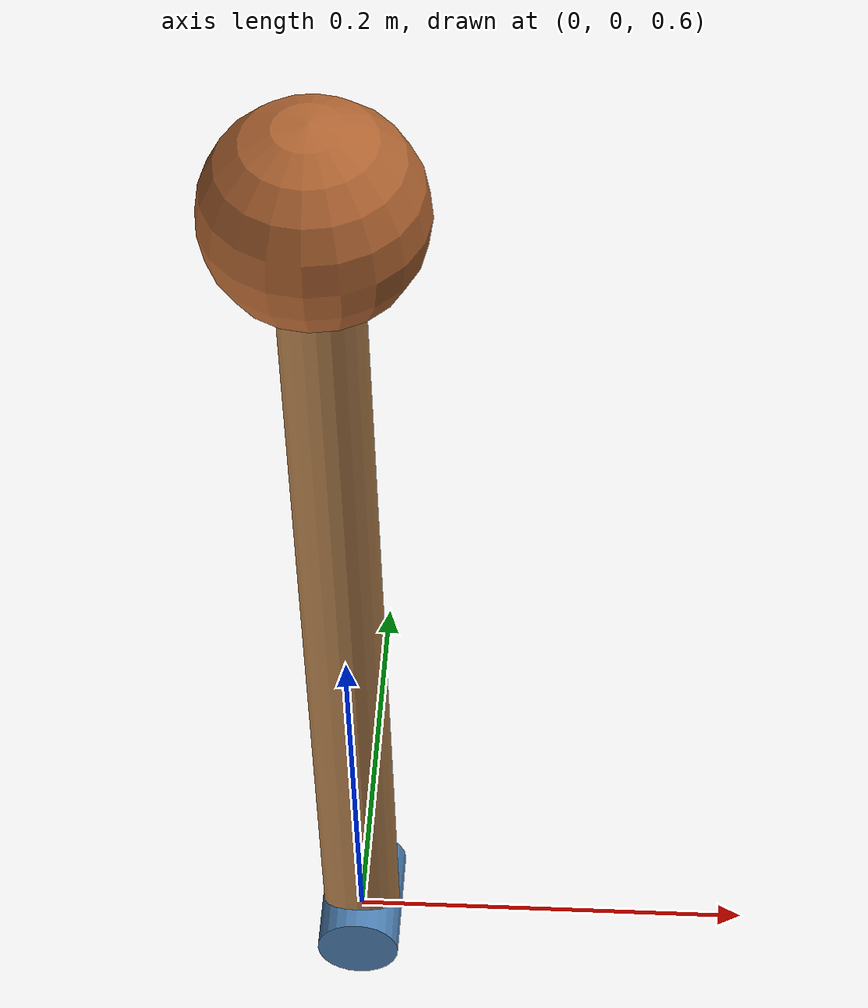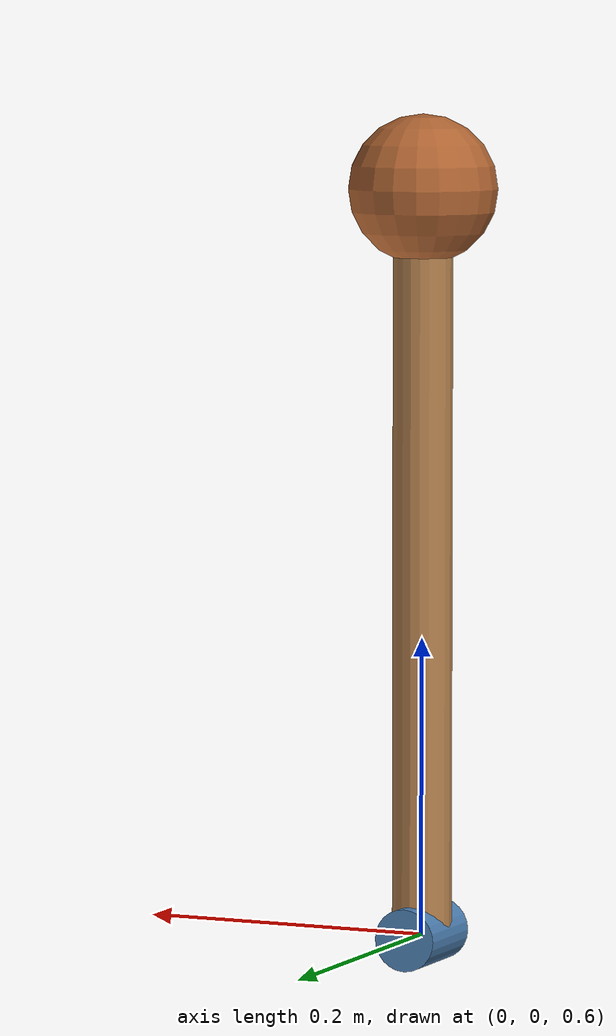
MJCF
<mujoco model="pendulum">
  <include file="./common/visual.xml"/>
  <include file="./common/skybox.xml"/>
  <include file="./common/materials.xml"/>

  <option timestep="0.02">
    <flag contact="disable" energy="enable"/>
  </option>

  <worldbody>
    <light name="light" pos="0 0 2"/>
    <geom name="floor" size="2 2 .2" type="plane" material="grid"/>
    <camera name="fixed" pos="0 -1.5 2" xyaxes='1 0 0 0 1 1'/>
    <camera name="lookat" mode="targetbodycom" target="pole" pos="0 -2 1"/>
    <body name="pole" pos="0 0 .6">
      <joint name="hinge" type="hinge" axis="0 1 0" damping="0.1"/>
      <geom name="base" material="decoration" type="cylinder" fromto="0 -.03 0 0 .03 0" size="0.021" mass="0"/>
      <geom name="pole" material="self" type="capsule" fromto="0 0 0 0 0 0.5" size="0.02" mass="0"/>
      <geom name="mass" material="effector" type="sphere" pos="0 0 0.5" size="0.05" mass="1"/>
    </body>
  </worldbody>

  <actuator>
    <motor name="torque" joint="hinge" gear="1" ctrlrange="-1 1" ctrllimited="true"/>
  </actuator>
</mujoco>

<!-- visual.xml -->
<mujoco>
    <visual>
        <headlight ambient=".4 .4 .4" diffuse=".8 .8 .8" specular="0.1 0.1 0.1"/>
        <map znear=".01"/>
        <quality shadowsize="2048"/>
    </visual>
</mujoco>

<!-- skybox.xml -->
<mujoco>
    <asset>
        <texture name="skybox" type="skybox" builtin="gradient" rgb1=".4 .6 .8" rgb2="0 0 0"
                 width="800" height="800" mark="random" markrgb="1 1 1"/>
    </asset>
</mujoco>

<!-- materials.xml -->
<!--
Common textures, colors and materials to be used throughout this suite. Some
materials such as xxx_highlight are activated on occurence of certain events,
for example receiving a positive reward.
-->
<mujoco>
    <asset>
        <texture name="grid" type="2d" builtin="checker" rgb1=".1 .2 .3" rgb2=".2 .3 .4" width="300" height="300" mark="edge" markrgb=".2 .3 .4"/>
        <material name="grid" texture="grid" texrepeat="1 1" texuniform="true" reflectance=".2"/>
        <material name="self" rgba=".7 .5 .3 1"/>
        <material name="self_default" rgba=".7 .5 .3 1"/>
        <material name="self_highlight" rgba="0 .5 .3 1"/>
        <material name="effector" rgba=".7 .4 .2 1"/>
        <material name="effector_default" rgba=".7 .4 .2 1"/>
        <material name="effector_highlight" rgba="0 .5 .3 1"/>
        <material name="decoration" rgba=".3 .5 .7 1"/>
        <material name="eye" rgba="0 .2 1 1"/>
        <material name="target" rgba=".6 .3 .3 1"/>
        <material name="target_default" rgba=".6 .3 .3 1"/>
        <material name="target_highlight" rgba=".6 .3 .3 .4"/>
        <material name="site" rgba=".5 .5 .5 .3"/>
    </asset>
</mujoco>
